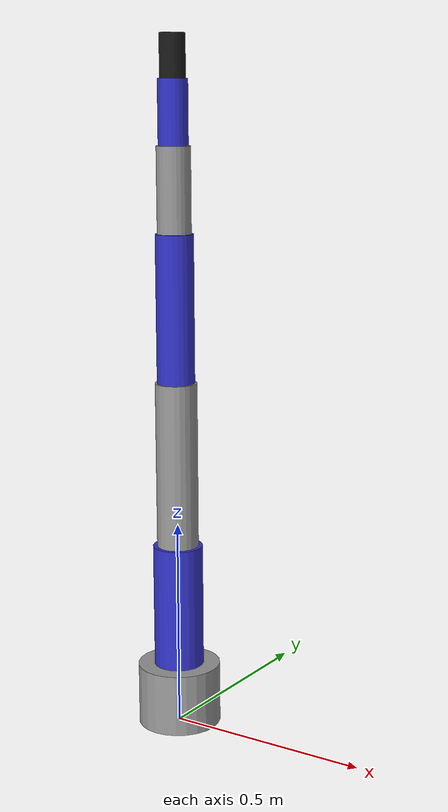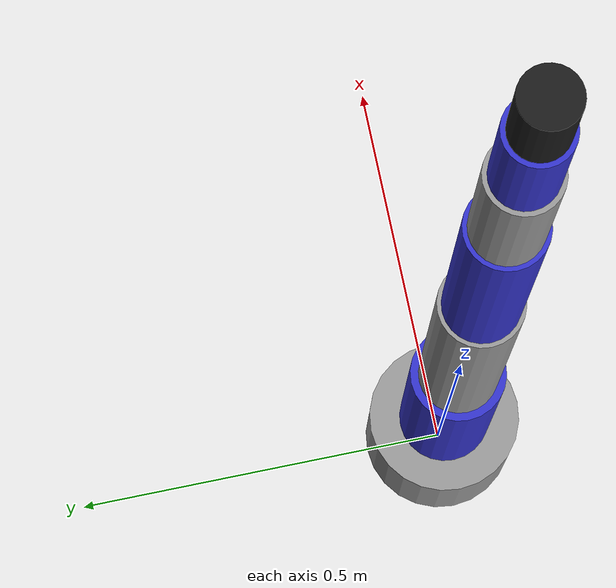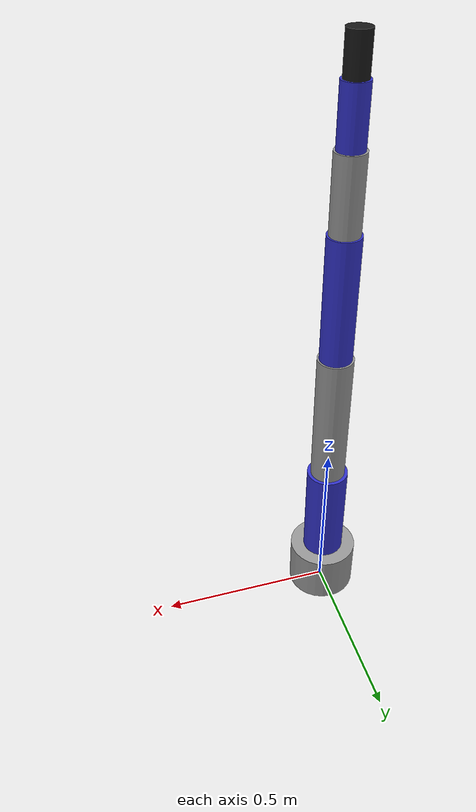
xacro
<?xml version="1.0"?>
<robot xmlns:xacro="http://www.ros.org/wiki/xacro" name="industrial_arm">
    <xacro:arg name="initial_positions_file" default="initial_positions.yaml" />

    <!-- Import industrial_arm urdf file -->
    <xacro:include filename="$(find industrial_arm_description)/urdf/industrial_arm.xacro" />

    <!-- Import control_xacro -->
    <xacro:include filename="industrial_arm.ros2_control.xacro" />

    <xacro:industrial_arm_ros2_control name="FakeSystem" initial_positions_file="$(arg initial_positions_file)"/>

</robot>

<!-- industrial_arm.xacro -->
<robot name="industrial_arm" xmlns:xacro="http://www.ros.org/wiki/xacro">

  <xacro:include filename="$(find industrial_arm_description)/urdf/materials.xacro"/>
  <xacro:include filename="$(find industrial_arm_description)/urdf/macros.xacro"/>

  <!-- World -->
  <link name="world"/>

  <!-- Base -->
  <xacro:link_cylinder
    name="base_link"
    length="0.15"
    radius="0.1"
    mass="5.0"
    material="grey"/>

  <joint name="world_joint" type="fixed">
    <parent link="world"/>
    <child link="base_link"/>
    <origin xyz="0 0 0" rpy="0 0 0"/>
  </joint>

  <!-- Joint 1 -->
  <xacro:link_cylinder name="shoulder_link" length="0.3" radius="0.06" mass="4.0" material="blue"/>
  <joint name="joint_1" type="revolute">
    <parent link="base_link"/>
    <child link="shoulder_link"/>
    <origin xyz="0 0 0.15" rpy="0 0 0"/>
    <axis xyz="0 0 1"/>
    <limit lower="-3.14" upper="3.14" effort="100" velocity="1.5"/>
  </joint>

  <!-- Joint 2 -->
  <xacro:link_cylinder name="upper_arm_link" length="0.4" radius="0.05" mass="3.0" material="grey"/>
  <joint name="joint_2" type="revolute">
    <parent link="shoulder_link"/>
    <child link="upper_arm_link"/>
    <origin xyz="0 0 0.3" rpy="0 0 0"/>
    <axis xyz="0 1 0"/>
    <limit lower="-1.57" upper="1.57" effort="100" velocity="1.5"/>
  </joint>

  <!-- Joint 3 -->
  <xacro:link_cylinder name="forearm_link" length="0.35" radius="0.045" mass="2.5" material="blue"/>
  <joint name="joint_3" type="revolute">
    <parent link="upper_arm_link"/>
    <child link="forearm_link"/>
    <origin xyz="0 0 0.4" rpy="0 0 0"/>
    <axis xyz="0 1 0"/>
    <limit lower="-1.57" upper="1.57" effort="80" velocity="1.5"/>
  </joint>

  <!-- Wrist joints -->
  <xacro:link_cylinder name="wrist_1_link" length="0.2" radius="0.04" mass="1.5" material="grey"/>
  <joint name="joint_4" type="revolute">
    <parent link="forearm_link"/>
    <child link="wrist_1_link"/>
    <origin xyz="0 0 0.35" rpy="0 0 0"/>
    <axis xyz="1 0 0"/>
    <limit lower="-3.14" upper="3.14" effort="50" velocity="2.0"/>
  </joint>

  <xacro:link_cylinder name="wrist_2_link" length="0.15" radius="0.035" mass="1.0" material="blue"/>
  <joint name="joint_5" type="revolute">
    <parent link="wrist_1_link"/>
    <child link="wrist_2_link"/>
    <origin xyz="0 0 0.2" rpy="0 0 0"/>
    <axis xyz="0 1 0"/>
    <limit lower="-1.57" upper="1.57" effort="40" velocity="2.0"/>
  </joint>

  <xacro:link_cylinder name="wrist_3_link" length="0.1" radius="0.03" mass="0.8" material="black"/>
  <joint name="joint_6" type="revolute">
    <parent link="wrist_2_link"/>
    <child link="wrist_3_link"/>
    <origin xyz="0 0 0.15" rpy="0 0 0"/>
    <axis xyz="1 0 0"/>
    <limit lower="-3.14" upper="3.14" effort="30" velocity="2.5"/>
  </joint>

  <!-- Tool -->
  <link name="tool0"/>

  <joint name="tool0_fixed" type="fixed">
    <parent link="wrist_3_link"/>
    <child link="tool0"/>
    <origin xyz="0 0 0.1" rpy="0 0 0"/>
  </joint>

</robot>

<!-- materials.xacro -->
<robot xmlns:xacro="http://www.ros.org/wiki/xacro">

  <material name="grey">
    <color rgba="0.6 0.6 0.6 1.0"/>
  </material>

  <material name="blue">
    <color rgba="0.2 0.2 0.8 1.0"/>
  </material>

  <material name="black">
    <color rgba="0.1 0.1 0.1 1.0"/>
  </material>

</robot>

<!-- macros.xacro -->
<robot xmlns:xacro="http://www.ros.org/wiki/xacro">

  <!-- Link macro -->
  <xacro:macro name="link_cylinder" params="name length radius mass material">
    <link name="${name}">
      <visual>
        <geometry>
          <cylinder length="${length}" radius="${radius}"/>
        </geometry>
        <material name="${material}"/>
        <origin xyz="0 0 ${length/2}" rpy="0 0 0"/>
      </visual>

      <collision>
        <geometry>
          <cylinder length="${length}" radius="${radius}"/>
        </geometry>
        <origin xyz="0 0 ${length/2}" rpy="0 0 0"/>
      </collision>

      <inertial>
        <mass value="${mass}"/>
        <origin xyz="0 0 ${length/2}" rpy="0 0 0"/>
        <inertia
          ixx="0.01" iyy="0.01" izz="0.01"
          ixy="0.0" ixz="0.0" iyz="0.0"/>
      </inertial>
    </link>
  </xacro:macro>

</robot>
